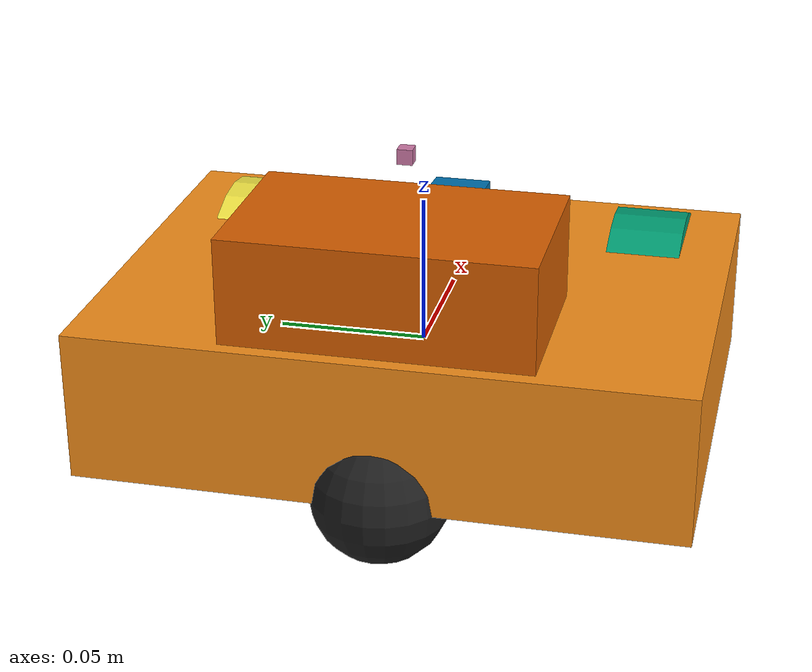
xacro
<?xml version="1.0"?>

<robot xmlns:xacro="http://www.ros.org/wiki/xacro" name="my_robot">

     <xacro:include filename="$(find tutorial)/urdf/inertial.xacro" />

    <link name="base_link">
        <visual>
            <geometry>
                <box size="0.15 .2 0.05"/>
            </geometry>
            <material name="Orange"/>
        </visual>
        <collision>
            <geometry>
                <box size="0.15 .2 0.05"/>
            </geometry>
        </collision>
        <inertial>
            <mass value="30"/>
            <origin xyz="0.0 0.0 0"/>
            <inertia ixx="0.3" ixy="0.06" ixz="0.06" iyy="0.3" iyz="0.06" izz="1"/>
        </inertial>
    </link>

    <link name="caster_back_link">
  <visual>
    <origin rpy="0 0 0" xyz="0 0 0"/> k<!-- Reset the origin to the center of the sphere -->
    <geometry>
      <sphere radius="0.023"/>
    </geometry>
    <material name = "Black"/>
  </visual>
  <collision>
    <origin rpy="0 0 0" xyz="0 0 0"/> <!-- Reset the origin to the center of the sphere -->
    <geometry>
      <sphere radius="0.023"/>
    </geometry>
  </collision>
  <xacro:inertial_sphere mass="9" radius="0.021">
            <origin xyz="0 0 0" rpy="0 0 0"/>
        </xacro:inertial_sphere>
</link>

<joint name="caster_back_joint" type="fixed">
  <parent link="base_link"/>
  <child link="caster_back_link"/>
  <origin xyz="-0.063 0.0 -0.025"/>
  <dynamics damping="0.0" friction="0.0"/>
</joint>

<gazebo reference="caster_back_link">
  <turnGravityOff>false</turnGravityOff>
</gazebo>

<!--Wheels-->
 <joint name="base_to_left_arm" type="continuous">
        <axis xyz="0 1 0"/>
        <parent link="base_link"/>
        <child link="left_arm"/>
        <origin rpy="0 0 0" xyz="0.05 -0.07 -0.009"/> <!-- move the child_frame with respect to parent_frame -->
    </joint>
 <link name="left_arm">
        <visual>
            <origin rpy="0 1.57 1.57" xyz="0 0 0"/> <!-- set the origin to 0 to recenter the link to the child_frame -->
            <geometry>
                <cylinder length=".025" radius=".04"/>
            </geometry>
        </visual>
        <collision>
            <origin rpy="0 1.57 1.57" xyz="0 0 0"/> <!-- set the origin to 0 to recenter the link to the child_frame -->
            <geometry>
                <cylinder length=".025" radius=".04"/>
            </geometry>
        </collision>
        <xacro:inertial_cylinder mass="7" length=".025" radius=".04">
            <origin xyz="0 0 0" rpy="1.57 1.57 0"/>
        </xacro:inertial_cylinder>
    </link>

    <transmission name="left_arm_transmission">
        <type>transmission_interface/SimpleTransmission</type>
        <actuator name="left_motor">
            <mechanicalReduction>1</mechanicalReduction>
        </actuator>
        <joint name="base_to_left_arm">
            <hardwareInterface>hardware_interface/VelocityJointInterface</hardwareInterface>
        </joint>
    </transmission>

  <joint name="base_to_right_arm" type="continuous">
        <axis xyz="0 1 0"/>
        <parent link="base_link"/>
        <child link="right_arm"/>
        <origin rpy="0 0 0" xyz="0.05 0.07 -0.009"/> <!-- move the child_frame with respect to parent_frame -->
    </joint>

     <link name="right_arm">
        <visual>
            <origin rpy="0 1.57 1.57" xyz="0 0 0"/> <!-- set the origin to 0 to recenter the link to the child_frame -->
            <geometry>
                <cylinder length=".025" radius=".04"/>
            </geometry>
        </visual>
        <collision>
            <origin rpy="0 1.57 1.57" xyz="0 0 0"/> <!-- set the origin to 0 to recenter the link to the child_frame -->
            <geometry>
                <cylinder length=".025" radius=".04"/>
            </geometry>
        </collision>
        <xacro:inertial_cylinder mass="7" length=".025" radius=".04">
            <origin xyz="0 0 0" rpy="1.57 1.57 0"/>
        </xacro:inertial_cylinder>
    </link>

    <transmission name="right_arm_transmission">
        <type>transmission_interface/SimpleTransmission</type>
        <actuator name="right_motor">
            <mechanicalReduction>1</mechanicalReduction>
        </actuator>
        <joint name="base_to_right_arm">
            <hardwareInterface>hardware_interface/VelocityJointInterface</hardwareInterface>
        </joint>
    </transmission>

    <link name="camera">
    <visual>
      <geometry>
        <box size="0.01 0.02 0.008"/>
      </geometry>
    </visual>
    <collision>
      <geometry>
        <box size="0.01 0.02 0.008"/>
      </geometry>
    </collision>
    <inertial>
      <mass value="0.01"/>
      <inertia ixx="0.021" ixy="0" ixz="0" iyy="0.027" iyz="0" izz="0.010"/>
    </inertial>
  </link>

  <!-- Define the joint connecting camera to the base -->
  <joint name="cam_to_base" type="fixed">
    <origin xyz="0.06 0 0.03" rpy="0 0.08 0"/>
    <parent link="base_link"/>
    <child link="camera"/>
  </joint>

  <!-- Define Gazebo specific properties for the camera -->

    <gazebo reference="camera">
  <sensor name="camerax" type="depth">
    <update_rate>20</update_rate>
    <visualize>false</visualize>
    <camera>
      <horizontal_fov>1.047198</horizontal_fov>
      <image>
        <width>640</width>
        <height>480</height>
        <format>R8G8B8</format>
      </image>
      <clip>
        <near>1</near>
        <far>10</far>
      </clip>
    </camera>
    <plugin name="camera_controller" filename="libgazebo_ros_openni_kinect.so">
      <baseline>0.2</baseline>
      <alwaysOn>true</alwaysOn>
      <updateRate>1.0</updateRate>
      <cameraName>camerax_ir</cameraName>
      <imageTopicName>/camerax/color/image_raw</imageTopicName>
      <cameraInfoTopicName>/camerax/color/camera_info</cameraInfoTopicName>
      <depthImageTopicName>/camerax/depth/image_raw</depthImageTopicName>
      <depthImageInfoTopicName>/camerax/depth/camera_info</depthImageInfoTopicName>
      <pointCloudTopicName>/camerax/depth/points</pointCloudTopicName>
      <frameName>camera</frameName>
      <pointCloudCutoff>0.5</pointCloudCutoff>
      <pointCloudCutoffMax>3.0</pointCloudCutoffMax>
      <distortionK1>0.00000001</distortionK1>
      <distortionK2>0.00000001</distortionK2>
      <distortionK3>0.00000001</distortionK3>
      <distortionT1>0.00000001</distortionT1>
      <distortionT2>0.00000001</distortionT2>
      <CxPrime>0</CxPrime>
      <Cx>0</Cx>
      <Cy>0</Cy>
      <focalLength>0</focalLength>
      <hackBaseline>0</hackBaseline>
    </plugin>
  </sensor>
</gazebo>

     <link name="above_base_link">
        <visual>
            <geometry>
                <box size="0.06 0.1 0.04"/>
            </geometry>
        </visual>
        <collision>
            <geometry>
                <box size="0.06 0.1 0.04"/>
            </geometry>
        </collision>
        <inertial>
            <mass value="0.2"/>
            <inertia ixx="0.21" ixy="0" ixz="0" iyy="0.27" iyz="0" izz="0.10"/>
        </inertial>
    </link>

    <joint name="above_base_joint" type="fixed">
    <parent link="base_link"/>
    <child link="above_base_link"/>
    <origin rpy="0 0 0" xyz="-0.04 0.0 0.04"/>
  </joint>

<joint name="base_laser_joint" type="fixed">
            <origin xyz="0.015 0 0.035" rpy="0 0 0" />
            <parent link="above_base_link" />
            <child link="base_laser" />
        </joint>

        <link name="base_laser">
            <visual>
                <origin xyz="0 0 0" rpy="0 0 0"/>
                <geometry>
                    <box size="0.005 0.005 0.005"/>
                </geometry>

            </visual>
            <inertial>
                <mass value="0.02" />
                <origin xyz="0 0 0" />
                <inertia ixx="0.0001" ixy="0.0" ixz="0.0"
                    iyy="0.0001" iyz="0.0"
                    izz="0.0001" />
            </inertial>
        </link>

        <!-- Set up laser gazebo details -->
        <gazebo reference="base_laser">
            <sensor type="ray" name="laser">
                <pose>0 0 0 0 0 0</pose>
                <visualize>false</visualize>
                <update_rate>40</update_rate>
                <ray>
                    <scan>
                        <horizontal>
                            <samples>1080</samples>
                            <resolution>1</resolution>
                            <min_angle>-3.14159</min_angle>
                            <max_angle>3.14159</max_angle>
                        </horizontal>
                    </scan>
                    <range>
                        <min>0.3</min>
                        <max>10.0</max>
                        <resolution>0.01</resolution>
                    </range>
                </ray>
                <plugin name="hokuyo_node" filename="libgazebo_ros_laser.so">
                    <topicName>/scan</topicName>
                    <frameName>base_laser</frameName>
                </plugin>
            </sensor>
        </gazebo>

    <!-- Add ROS plugin so we can interact with our robot -->
    <gazebo>
        <plugin name="gazebo_ros_control" filename="libgazebo_ros_control.so">
            <robotNamespace>/</robotNamespace>
        </plugin>
    </gazebo>
    <gazebo reference="display_screen_link">

  <visual>
    <plugin name="display_video_controller" filename="libgazebo_ros_video.so">
      <topicName>image</topicName>
      <height>800</height>
      <width>800</width>
    </plugin>
  </visual>
</gazebo>
<gazebo reference="base_link">
    <material>Gazebo/Orange</material>
  </gazebo>

</robot>
